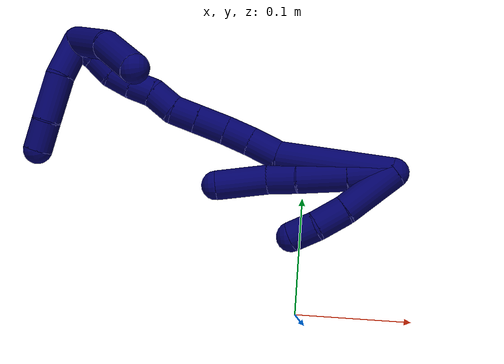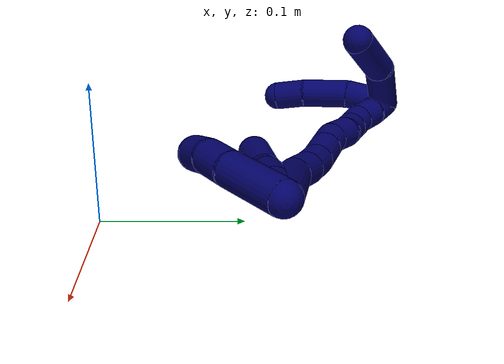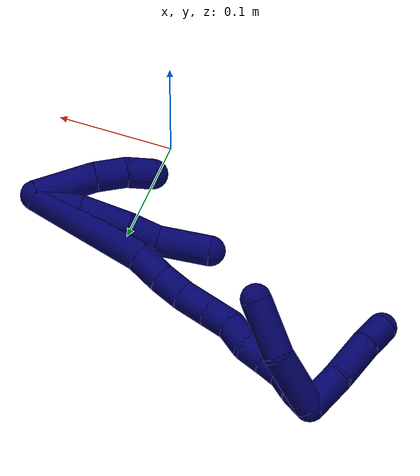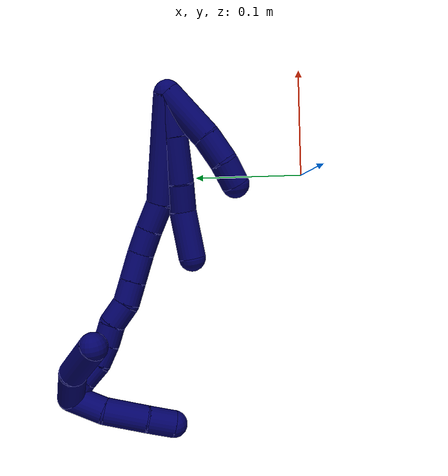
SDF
<sdf version="1.7">
 <world name="default">
  <model name="7">
   <static>0</static>
   <link name="7">
    <collision name="collision-cylinder-e_1_2_8">
     <pose>3.7e-05 0.000132 -0.018654 -3.13454 0.002001 -0.553041</pose>
     <geometry><cylinder><radius>0.0125</radius><length>0.037308</length></cylinder></geometry>
     <surface>
      <friction><ode><mu>1.16</mu><mu2>1.16</mu2><slip1>0</slip1><slip2>0</slip2></ode></friction>
      <contact><ode><kp>1e+06</kp><kd>1</kd><max_vel>0</max_vel><min_depth>0.001</min_depth></ode></contact>
     </surface>
    </collision>
    <visual name="visual-cylinder-e_1_2_8">
     <pose>3.7e-05 0.000132 -0.018654 -3.13454 0.002001 -0.553041</pose>
     <geometry><cylinder><radius>0.0125</radius><length>0.037308</length></cylinder></geometry>
     <material><ambient>0.003922 0 0.403922 1</ambient></material>
    </visual>
    <collision name="collision-cylinder-e_2_8_9">
     <pose>0.000168 0.001162 -0.058338 -3.09889 0.004422 -0.206361</pose>
     <geometry><cylinder><radius>0.0125</radius><length>0.042101</length></cylinder></geometry>
     <surface>
      <friction><ode><mu>1.16</mu><mu2>1.16</mu2><slip1>0</slip1><slip2>0</slip2></ode></friction>
      <contact><ode><kp>1e+06</kp><kd>1</kd><max_vel>0</max_vel><min_depth>0.001</min_depth></ode></contact>
     </surface>
    </collision>
    <visual name="visual-cylinder-e_2_8_9">
     <pose>0.000168 0.001162 -0.058338 -3.09889 0.004422 -0.206361</pose>
     <geometry><cylinder><radius>0.0125</radius><length>0.042101</length></cylinder></geometry>
     <material><ambient>0.003922 0 0.403922 1</ambient></material>
    </visual>
    <collision name="collision-cylinder-e_3_9_10">
     <pose>0.001257 0.003482 -0.092313 -3.03223 0.076351 -1.21849</pose>
     <geometry><cylinder><radius>0.0125</radius><length>0.026119</length></cylinder></geometry>
     <surface>
      <friction><ode><mu>1.16</mu><mu2>1.16</mu2><slip1>0</slip1><slip2>0</slip2></ode></friction>
      <contact><ode><kp>1e+06</kp><kd>1</kd><max_vel>0</max_vel><min_depth>0.001</min_depth></ode></contact>
     </surface>
    </collision>
    <visual name="visual-cylinder-e_3_9_10">
     <pose>0.001257 0.003482 -0.092313 -3.03223 0.076351 -1.21849</pose>
     <geometry><cylinder><radius>0.0125</radius><length>0.026119</length></cylinder></geometry>
     <material><ambient>0.003922 0 0.403922 1</ambient></material>
    </visual>
    <collision name="collision-cylinder-e_4_10_6">
     <pose>-0.000316 0.002929 -0.127256 3.05211 -0.115788 -1.82612</pose>
     <geometry><cylinder><radius>0.0125</radius><length>0.044471</length></cylinder></geometry>
     <surface>
      <friction><ode><mu>1.16</mu><mu2>1.16</mu2><slip1>0</slip1><slip2>0</slip2></ode></friction>
      <contact><ode><kp>1e+06</kp><kd>1</kd><max_vel>0</max_vel><min_depth>0.001</min_depth></ode></contact>
     </surface>
    </collision>
    <visual name="visual-cylinder-e_4_10_6">
     <pose>-0.000316 0.002929 -0.127256 3.05211 -0.115788 -1.82612</pose>
     <geometry><cylinder><radius>0.0125</radius><length>0.044471</length></cylinder></geometry>
     <material><ambient>0.003922 0 0.403922 1</ambient></material>
    </visual>
    <collision name="collision-cylinder-e_1_2_11">
     <pose>0.000587 -0.014811 -0.020726 2.52111 0.023046 0.071858</pose>
     <geometry><cylinder><radius>0.0125</radius><length>0.050962</length></cylinder></geometry>
     <surface>
      <friction><ode><mu>1.16</mu><mu2>1.16</mu2><slip1>0</slip1><slip2>0</slip2></ode></friction>
      <contact><ode><kp>1e+06</kp><kd>1</kd><max_vel>0</max_vel><min_depth>0.001</min_depth></ode></contact>
     </surface>
    </collision>
    <visual name="visual-cylinder-e_1_2_11">
     <pose>0.000587 -0.014811 -0.020726 2.52111 0.023046 0.071858</pose>
     <geometry><cylinder><radius>0.0125</radius><length>0.050962</length></cylinder></geometry>
     <material><ambient>0.003922 0 0.403922 1</ambient></material>
    </visual>
    <collision name="collision-cylinder-e_2_11_12">
     <pose>0.001455 -0.035624 -0.053129 2.6669 0.021336 0.088144</pose>
     <geometry><cylinder><radius>0.0125</radius><length>0.026265</length></cylinder></geometry>
     <surface>
      <friction><ode><mu>1.16</mu><mu2>1.16</mu2><slip1>0</slip1><slip2>0</slip2></ode></friction>
      <contact><ode><kp>1e+06</kp><kd>1</kd><max_vel>0</max_vel><min_depth>0.001</min_depth></ode></contact>
     </surface>
    </collision>
    <visual name="visual-cylinder-e_2_11_12">
     <pose>0.001455 -0.035624 -0.053129 2.6669 0.021336 0.088144</pose>
     <geometry><cylinder><radius>0.0125</radius><length>0.026265</length></cylinder></geometry>
     <material><ambient>0.003922 0 0.403922 1</ambient></material>
    </visual>
    <collision name="collision-cylinder-e_3_12_5">
     <pose>0.003694 -0.044774 -0.075573 2.85698 0.172958 1.08833</pose>
     <geometry><cylinder><radius>0.0125</radius><length>0.022773</length></cylinder></geometry>
     <surface>
      <friction><ode><mu>1.16</mu><mu2>1.16</mu2><slip1>0</slip1><slip2>0</slip2></ode></friction>
      <contact><ode><kp>1e+06</kp><kd>1</kd><max_vel>0</max_vel><min_depth>0.001</min_depth></ode></contact>
     </surface>
    </collision>
    <visual name="visual-cylinder-e_3_12_5">
     <pose>0.003694 -0.044774 -0.075573 2.85698 0.172958 1.08833</pose>
     <geometry><cylinder><radius>0.0125</radius><length>0.022773</length></cylinder></geometry>
     <material><ambient>0.003922 0 0.403922 1</ambient></material>
    </visual>
    <collision name="collision-cylinder-e_1_2_13">
     <pose>-0.001944 0.011716 -0.04753 -2.89991 -0.039687 0.324007</pose>
     <geometry><cylinder><radius>0.0125</radius><length>0.097983</length></cylinder></geometry>
     <surface>
      <friction><ode><mu>1.16</mu><mu2>1.16</mu2><slip1>0</slip1><slip2>0</slip2></ode></friction>
      <contact><ode><kp>1e+06</kp><kd>1</kd><max_vel>0</max_vel><min_depth>0.001</min_depth></ode></contact>
     </surface>
    </collision>
    <visual name="visual-cylinder-e_1_2_13">
     <pose>-0.001944 0.011716 -0.04753 -2.89991 -0.039687 0.324007</pose>
     <geometry><cylinder><radius>0.0125</radius><length>0.097983</length></cylinder></geometry>
     <material><ambient>0.003922 0 0.403922 1</ambient></material>
    </visual>
    <collision name="collision-cylinder-e_2_13_14">
     <pose>-0.006789 0.029857 -0.106509 -2.63023 -0.217539 0.79143</pose>
     <geometry><cylinder><radius>0.0125</radius><length>0.02689</length></cylinder></geometry>
     <surface>
      <friction><ode><mu>1.16</mu><mu2>1.16</mu2><slip1>0</slip1><slip2>0</slip2></ode></friction>
      <contact><ode><kp>1e+06</kp><kd>1</kd><max_vel>0</max_vel><min_depth>0.001</min_depth></ode></contact>
     </surface>
    </collision>
    <visual name="visual-cylinder-e_2_13_14">
     <pose>-0.006789 0.029857 -0.106509 -2.63023 -0.217539 0.79143</pose>
     <geometry><cylinder><radius>0.0125</radius><length>0.02689</length></cylinder></geometry>
     <material><ambient>0.003922 0 0.403922 1</ambient></material>
    </visual>
    <collision name="collision-cylinder-e_3_14_15">
     <pose>-0.0129 0.041091 -0.128215 -2.70311 -0.275977 1.11467</pose>
     <geometry><cylinder><radius>0.0125</radius><length>0.023549</length></cylinder></geometry>
     <surface>
      <friction><ode><mu>1.16</mu><mu2>1.16</mu2><slip1>0</slip1><slip2>0</slip2></ode></friction>
      <contact><ode><kp>1e+06</kp><kd>1</kd><max_vel>0</max_vel><min_depth>0.001</min_depth></ode></contact>
     </surface>
    </collision>
    <visual name="visual-cylinder-e_3_14_15">
     <pose>-0.0129 0.041091 -0.128215 -2.70311 -0.275977 1.11467</pose>
     <geometry><cylinder><radius>0.0125</radius><length>0.023549</length></cylinder></geometry>
     <material><ambient>0.003922 0 0.403922 1</ambient></material>
    </visual>
    <collision name="collision-cylinder-e_4_15_16">
     <pose>-0.020941 0.050151 -0.150335 -2.79753 -0.366201 1.63444</pose>
     <geometry><cylinder><radius>0.0125</radius><length>0.026992</length></cylinder></geometry>
     <surface>
      <friction><ode><mu>1.16</mu><mu2>1.16</mu2><slip1>0</slip1><slip2>0</slip2></ode></friction>
      <contact><ode><kp>1e+06</kp><kd>1</kd><max_vel>0</max_vel><min_depth>0.001</min_depth></ode></contact>
     </surface>
    </collision>
    <visual name="visual-cylinder-e_4_15_16">
     <pose>-0.020941 0.050151 -0.150335 -2.79753 -0.366201 1.63444</pose>
     <geometry><cylinder><radius>0.0125</radius><length>0.026992</length></cylinder></geometry>
     <material><ambient>0.003922 0 0.403922 1</ambient></material>
    </visual>
    <collision name="collision-cylinder-e_5_16_17">
     <pose>-0.029602 0.0578 -0.171666 -2.79702 -0.363651 1.62579</pose>
     <geometry><cylinder><radius>0.0125</radius><length>0.021528</length></cylinder></geometry>
     <surface>
      <friction><ode><mu>1.16</mu><mu2>1.16</mu2><slip1>0</slip1><slip2>0</slip2></ode></friction>
      <contact><ode><kp>1e+06</kp><kd>1</kd><max_vel>0</max_vel><min_depth>0.001</min_depth></ode></contact>
     </surface>
    </collision>
    <visual name="visual-cylinder-e_5_16_17">
     <pose>-0.029602 0.0578 -0.171666 -2.79702 -0.363651 1.62579</pose>
     <geometry><cylinder><radius>0.0125</radius><length>0.021528</length></cylinder></geometry>
     <material><ambient>0.003922 0 0.403922 1</ambient></material>
    </visual>
    <collision name="collision-cylinder-e_6_17_18">
     <pose>-0.037533 0.068109 -0.189203 -2.43328 -0.368589 0.933931</pose>
     <geometry><cylinder><radius>0.0125</radius><length>0.022776</length></cylinder></geometry>
     <surface>
      <friction><ode><mu>1.16</mu><mu2>1.16</mu2><slip1>0</slip1><slip2>0</slip2></ode></friction>
      <contact><ode><kp>1e+06</kp><kd>1</kd><max_vel>0</max_vel><min_depth>0.001</min_depth></ode></contact>
     </surface>
    </collision>
    <visual name="visual-cylinder-e_6_17_18">
     <pose>-0.037533 0.068109 -0.189203 -2.43328 -0.368589 0.933931</pose>
     <geometry><cylinder><radius>0.0125</radius><length>0.022776</length></cylinder></geometry>
     <material><ambient>0.003922 0 0.403922 1</ambient></material>
    </visual>
    <collision name="collision-cylinder-e_7_18_19">
     <pose>-0.044105 0.07879 -0.206321 -2.74687 -0.246697 1.10999</pose>
     <geometry><cylinder><radius>0.0125</radius><length>0.02022</length></cylinder></geometry>
     <surface>
      <friction><ode><mu>1.16</mu><mu2>1.16</mu2><slip1>0</slip1><slip2>0</slip2></ode></friction>
      <contact><ode><kp>1e+06</kp><kd>1</kd><max_vel>0</max_vel><min_depth>0.001</min_depth></ode></contact>
     </surface>
    </collision>
    <visual name="visual-cylinder-e_7_18_19">
     <pose>-0.044105 0.07879 -0.206321 -2.74687 -0.246697 1.10999</pose>
     <geometry><cylinder><radius>0.0125</radius><length>0.02022</length></cylinder></geometry>
     <material><ambient>0.003922 0 0.403922 1</ambient></material>
    </visual>
    <collision name="collision-cylinder-e_8_19_20">
     <pose>-0.050767 0.086686 -0.223474 -2.67067 -0.432051 1.48177</pose>
     <geometry><cylinder><radius>0.0125</radius><length>0.020028</length></cylinder></geometry>
     <surface>
      <friction><ode><mu>1.16</mu><mu2>1.16</mu2><slip1>0</slip1><slip2>0</slip2></ode></friction>
      <contact><ode><kp>1e+06</kp><kd>1</kd><max_vel>0</max_vel><min_depth>0.001</min_depth></ode></contact>
     </surface>
    </collision>
    <visual name="visual-cylinder-e_8_19_20">
     <pose>-0.050767 0.086686 -0.223474 -2.67067 -0.432051 1.48177</pose>
     <geometry><cylinder><radius>0.0125</radius><length>0.020028</length></cylinder></geometry>
     <material><ambient>0.003922 0 0.403922 1</ambient></material>
    </visual>
    <collision name="collision-cylinder-e_9_20_21">
     <pose>-0.060082 0.096901 -0.237641 -2.35405 -0.537457 1.17069</pose>
     <geometry><cylinder><radius>0.0125</radius><length>0.020006</length></cylinder></geometry>
     <surface>
      <friction><ode><mu>1.16</mu><mu2>1.16</mu2><slip1>0</slip1><slip2>0</slip2></ode></friction>
      <contact><ode><kp>1e+06</kp><kd>1</kd><max_vel>0</max_vel><min_depth>0.001</min_depth></ode></contact>
     </surface>
    </collision>
    <visual name="visual-cylinder-e_9_20_21">
     <pose>-0.060082 0.096901 -0.237641 -2.35405 -0.537457 1.17069</pose>
     <geometry><cylinder><radius>0.0125</radius><length>0.020006</length></cylinder></geometry>
     <material><ambient>0.003922 0 0.403922 1</ambient></material>
    </visual>
    <collision name="collision-cylinder-e_10_21_1">
     <pose>-0.070879 0.108063 -0.250211 -2.47938 -0.602594 1.47004</pose>
     <geometry><cylinder><radius>0.0125</radius><length>0.020028</length></cylinder></geometry>
     <surface>
      <friction><ode><mu>1.16</mu><mu2>1.16</mu2><slip1>0</slip1><slip2>0</slip2></ode></friction>
      <contact><ode><kp>1e+06</kp><kd>1</kd><max_vel>0</max_vel><min_depth>0.001</min_depth></ode></contact>
     </surface>
    </collision>
    <visual name="visual-cylinder-e_10_21_1">
     <pose>-0.070879 0.108063 -0.250211 -2.47938 -0.602594 1.47004</pose>
     <geometry><cylinder><radius>0.0125</radius><length>0.020028</length></cylinder></geometry>
     <material><ambient>0.003922 0 0.403922 1</ambient></material>
    </visual>
    <collision name="collision-cylinder-e_1_1_22">
     <pose>-0.073949 0.09814 -0.264289 2.03836 0.153875 0.249265</pose>
     <geometry><cylinder><radius>0.0125</radius><length>0.034</length></cylinder></geometry>
     <surface>
      <friction><ode><mu>1.16</mu><mu2>1.16</mu2><slip1>0</slip1><slip2>0</slip2></ode></friction>
      <contact><ode><kp>1e+06</kp><kd>1</kd><max_vel>0</max_vel><min_depth>0.001</min_depth></ode></contact>
     </surface>
    </collision>
    <visual name="visual-cylinder-e_1_1_22">
     <pose>-0.073949 0.09814 -0.264289 2.03836 0.153875 0.249265</pose>
     <geometry><cylinder><radius>0.0125</radius><length>0.034</length></cylinder></geometry>
     <material><ambient>0.003922 0 0.403922 1</ambient></material>
    </visual>
    <collision name="collision-cylinder-e_2_22_23">
     <pose>-0.064027 0.065916 -0.279236 1.97532 0.37219 0.556037</pose>
     <geometry><cylinder><radius>0.0125</radius><length>0.040236</length></cylinder></geometry>
     <surface>
      <friction><ode><mu>1.16</mu><mu2>1.16</mu2><slip1>0</slip1><slip2>0</slip2></ode></friction>
      <contact><ode><kp>1e+06</kp><kd>1</kd><max_vel>0</max_vel><min_depth>0.001</min_depth></ode></contact>
     </surface>
    </collision>
    <visual name="visual-cylinder-e_2_22_23">
     <pose>-0.064027 0.065916 -0.279236 1.97532 0.37219 0.556037</pose>
     <geometry><cylinder><radius>0.0125</radius><length>0.040236</length></cylinder></geometry>
     <material><ambient>0.003922 0 0.403922 1</ambient></material>
    </visual>
    <collision name="collision-cylinder-e_3_23_4">
     <pose>-0.050706 0.038551 -0.291822 2.04551 0.484922 0.769924</pose>
     <geometry><cylinder><radius>0.0125</radius><length>0.025764</length></cylinder></geometry>
     <surface>
      <friction><ode><mu>1.16</mu><mu2>1.16</mu2><slip1>0</slip1><slip2>0</slip2></ode></friction>
      <contact><ode><kp>1e+06</kp><kd>1</kd><max_vel>0</max_vel><min_depth>0.001</min_depth></ode></contact>
     </surface>
    </collision>
    <visual name="visual-cylinder-e_3_23_4">
     <pose>-0.050706 0.038551 -0.291822 2.04551 0.484922 0.769924</pose>
     <geometry><cylinder><radius>0.0125</radius><length>0.025764</length></cylinder></geometry>
     <material><ambient>0.003922 0 0.403922 1</ambient></material>
    </visual>
    <collision name="collision-cylinder-e_1_1_24">
     <pose>-0.089178 0.099805 -0.238036 0.619791 -0.502865 -0.164135</pose>
     <geometry><cylinder><radius>0.0125</radius><length>0.052385</length></cylinder></geometry>
     <surface>
      <friction><ode><mu>1.16</mu><mu2>1.16</mu2><slip1>0</slip1><slip2>0</slip2></ode></friction>
      <contact><ode><kp>1e+06</kp><kd>1</kd><max_vel>0</max_vel><min_depth>0.001</min_depth></ode></contact>
     </surface>
    </collision>
    <visual name="visual-cylinder-e_1_1_24">
     <pose>-0.089178 0.099805 -0.238036 0.619791 -0.502865 -0.164135</pose>
     <geometry><cylinder><radius>0.0125</radius><length>0.052385</length></cylinder></geometry>
     <material><ambient>0.003922 0 0.403922 1</ambient></material>
    </visual>
    <collision name="collision-cylinder-e_2_24_3">
     <pose>-0.10819 0.06918 -0.204292 0.854272 -0.271699 -0.124272</pose>
     <geometry><cylinder><radius>0.0125</radius><length>0.047615</length></cylinder></geometry>
     <surface>
      <friction><ode><mu>1.16</mu><mu2>1.16</mu2><slip1>0</slip1><slip2>0</slip2></ode></friction>
      <contact><ode><kp>1e+06</kp><kd>1</kd><max_vel>0</max_vel><min_depth>0.001</min_depth></ode></contact>
     </surface>
    </collision>
    <visual name="visual-cylinder-e_2_24_3">
     <pose>-0.10819 0.06918 -0.204292 0.854272 -0.271699 -0.124272</pose>
     <geometry><cylinder><radius>0.0125</radius><length>0.047615</length></cylinder></geometry>
     <material><ambient>0.003922 0 0.403922 1</ambient></material>
    </visual>
    <collision name="collision-sphere-3">
     <pose>-0.114579 0.051885 -0.18923 0 -0 0</pose>
     <geometry><sphere><radius>0.0125</radius></sphere></geometry>
     <surface>
      <friction><ode><mu>1.16</mu><mu2>1.16</mu2><slip1>0</slip1><slip2>0</slip2></ode></friction>
      <contact><ode><kp>1e+06</kp><kd>1</kd><max_vel>0</max_vel><min_depth>0.001</min_depth></ode></contact>
     </surface>
    </collision>
    <visual name="visual-sphere-3">
     <pose>-0.114579 0.051885 -0.18923 0 -0 0</pose>
     <geometry><sphere><radius>0.0125</radius></sphere></geometry>
     <material><ambient>0.003922 0 0.403922 1</ambient></material>
    </visual>
    <collision name="collision-sphere-24">
     <pose>-0.101801 0.086474 -0.219354 0 -0 0</pose>
     <geometry><sphere><radius>0.0125</radius></sphere></geometry>
     <surface>
      <friction><ode><mu>1.16</mu><mu2>1.16</mu2><slip1>0</slip1><slip2>0</slip2></ode></friction>
      <contact><ode><kp>1e+06</kp><kd>1</kd><max_vel>0</max_vel><min_depth>0.001</min_depth></ode></contact>
     </surface>
    </collision>
    <visual name="visual-sphere-24">
     <pose>-0.101801 0.086474 -0.219354 0 -0 0</pose>
     <geometry><sphere><radius>0.0125</radius></sphere></geometry>
     <material><ambient>0.003922 0 0.403922 1</ambient></material>
    </visual>
    <collision name="collision-sphere-4">
     <pose>-0.044701 0.028414 -0.297031 0 -0 0</pose>
     <geometry><sphere><radius>0.0125</radius></sphere></geometry>
     <surface>
      <friction><ode><mu>1.16</mu><mu2>1.16</mu2><slip1>0</slip1><slip2>0</slip2></ode></friction>
      <contact><ode><kp>1e+06</kp><kd>1</kd><max_vel>0</max_vel><min_depth>0.001</min_depth></ode></contact>
     </surface>
    </collision>
    <visual name="visual-sphere-4">
     <pose>-0.044701 0.028414 -0.297031 0 -0 0</pose>
     <geometry><sphere><radius>0.0125</radius></sphere></geometry>
     <material><ambient>0.003922 0 0.403922 1</ambient></material>
    </visual>
    <collision name="collision-sphere-23">
     <pose>-0.056711 0.048688 -0.286612 0 -0 0</pose>
     <geometry><sphere><radius>0.0125</radius></sphere></geometry>
     <surface>
      <friction><ode><mu>1.16</mu><mu2>1.16</mu2><slip1>0</slip1><slip2>0</slip2></ode></friction>
      <contact><ode><kp>1e+06</kp><kd>1</kd><max_vel>0</max_vel><min_depth>0.001</min_depth></ode></contact>
     </surface>
    </collision>
    <visual name="visual-sphere-23">
     <pose>-0.056711 0.048688 -0.286612 0 -0 0</pose>
     <geometry><sphere><radius>0.0125</radius></sphere></geometry>
     <material><ambient>0.003922 0 0.403922 1</ambient></material>
    </visual>
    <collision name="collision-sphere-22">
     <pose>-0.071343 0.083144 -0.27186 0 -0 0</pose>
     <geometry><sphere><radius>0.0125</radius></sphere></geometry>
     <surface>
      <friction><ode><mu>1.16</mu><mu2>1.16</mu2><slip1>0</slip1><slip2>0</slip2></ode></friction>
      <contact><ode><kp>1e+06</kp><kd>1</kd><max_vel>0</max_vel><min_depth>0.001</min_depth></ode></contact>
     </surface>
    </collision>
    <visual name="visual-sphere-22">
     <pose>-0.071343 0.083144 -0.27186 0 -0 0</pose>
     <geometry><sphere><radius>0.0125</radius></sphere></geometry>
     <material><ambient>0.003922 0 0.403922 1</ambient></material>
    </visual>
    <collision name="collision-sphere-1">
     <pose>-0.076554 0.113136 -0.256717 0 -0 0</pose>
     <geometry><sphere><radius>0.0125</radius></sphere></geometry>
     <surface>
      <friction><ode><mu>1.16</mu><mu2>1.16</mu2><slip1>0</slip1><slip2>0</slip2></ode></friction>
      <contact><ode><kp>1e+06</kp><kd>1</kd><max_vel>0</max_vel><min_depth>0.001</min_depth></ode></contact>
     </surface>
    </collision>
    <visual name="visual-sphere-1">
     <pose>-0.076554 0.113136 -0.256717 0 -0 0</pose>
     <geometry><sphere><radius>0.0125</radius></sphere></geometry>
     <material><ambient>0.003922 0 0.403922 1</ambient></material>
    </visual>
    <collision name="collision-sphere-21">
     <pose>-0.065203 0.10299 -0.243704 0 -0 0</pose>
     <geometry><sphere><radius>0.0125</radius></sphere></geometry>
     <surface>
      <friction><ode><mu>1.16</mu><mu2>1.16</mu2><slip1>0</slip1><slip2>0</slip2></ode></friction>
      <contact><ode><kp>1e+06</kp><kd>1</kd><max_vel>0</max_vel><min_depth>0.001</min_depth></ode></contact>
     </surface>
    </collision>
    <visual name="visual-sphere-21">
     <pose>-0.065203 0.10299 -0.243704 0 -0 0</pose>
     <geometry><sphere><radius>0.0125</radius></sphere></geometry>
     <material><ambient>0.003922 0 0.403922 1</ambient></material>
    </visual>
    <collision name="collision-sphere-11">
     <pose>0.001174 -0.029623 -0.041452 0 -0 0</pose>
     <geometry><sphere><radius>0.0125</radius></sphere></geometry>
     <surface>
      <friction><ode><mu>1.16</mu><mu2>1.16</mu2><slip1>0</slip1><slip2>0</slip2></ode></friction>
      <contact><ode><kp>1e+06</kp><kd>1</kd><max_vel>0</max_vel><min_depth>0.001</min_depth></ode></contact>
     </surface>
    </collision>
    <visual name="visual-sphere-11">
     <pose>0.001174 -0.029623 -0.041452 0 -0 0</pose>
     <geometry><sphere><radius>0.0125</radius></sphere></geometry>
     <material><ambient>0.003922 0 0.403922 1</ambient></material>
    </visual>
    <collision name="collision-sphere-6">
     <pose>-0.002885 0.000955 -0.149254 0 -0 0</pose>
     <geometry><sphere><radius>0.0125</radius></sphere></geometry>
     <surface>
      <friction><ode><mu>1.16</mu><mu2>1.16</mu2><slip1>0</slip1><slip2>0</slip2></ode></friction>
      <contact><ode><kp>1e+06</kp><kd>1</kd><max_vel>0</max_vel><min_depth>0.001</min_depth></ode></contact>
     </surface>
    </collision>
    <visual name="visual-sphere-6">
     <pose>-0.002885 0.000955 -0.149254 0 -0 0</pose>
     <geometry><sphere><radius>0.0125</radius></sphere></geometry>
     <material><ambient>0.003922 0 0.403922 1</ambient></material>
    </visual>
    <collision name="collision-sphere-10">
     <pose>0.002253 0.004903 -0.105257 0 -0 0</pose>
     <geometry><sphere><radius>0.0125</radius></sphere></geometry>
     <surface>
      <friction><ode><mu>1.16</mu><mu2>1.16</mu2><slip1>0</slip1><slip2>0</slip2></ode></friction>
      <contact><ode><kp>1e+06</kp><kd>1</kd><max_vel>0</max_vel><min_depth>0.001</min_depth></ode></contact>
     </surface>
    </collision>
    <visual name="visual-sphere-10">
     <pose>0.002253 0.004903 -0.105257 0 -0 0</pose>
     <geometry><sphere><radius>0.0125</radius></sphere></geometry>
     <material><ambient>0.003922 0 0.403922 1</ambient></material>
    </visual>
    <collision name="collision-sphere-9">
     <pose>0.000261 0.00206 -0.079369 0 -0 0</pose>
     <geometry><sphere><radius>0.0125</radius></sphere></geometry>
     <surface>
      <friction><ode><mu>1.16</mu><mu2>1.16</mu2><slip1>0</slip1><slip2>0</slip2></ode></friction>
      <contact><ode><kp>1e+06</kp><kd>1</kd><max_vel>0</max_vel><min_depth>0.001</min_depth></ode></contact>
     </surface>
    </collision>
    <visual name="visual-sphere-9">
     <pose>0.000261 0.00206 -0.079369 0 -0 0</pose>
     <geometry><sphere><radius>0.0125</radius></sphere></geometry>
     <material><ambient>0.003922 0 0.403922 1</ambient></material>
    </visual>
    <collision name="collision-sphere-2">
     <geometry><sphere><radius>0.0125</radius></sphere></geometry>
     <surface>
      <friction><ode><mu>1.16</mu><mu2>1.16</mu2><slip1>0</slip1><slip2>0</slip2></ode></friction>
      <contact><ode><kp>1e+06</kp><kd>1</kd><max_vel>0</max_vel><min_depth>0.001</min_depth></ode></contact>
     </surface>
    </collision>
    <visual name="visual-sphere-2">
     <geometry><sphere><radius>0.0125</radius></sphere></geometry>
     <material><ambient>0.003922 0 0.403922 1</ambient></material>
    </visual>
    <collision name="collision-sphere-19">
     <pose>-0.046574 0.08256 -0.215371 0 -0 0</pose>
     <geometry><sphere><radius>0.0125</radius></sphere></geometry>
     <surface>
      <friction><ode><mu>1.16</mu><mu2>1.16</mu2><slip1>0</slip1><slip2>0</slip2></ode></friction>
      <contact><ode><kp>1e+06</kp><kd>1</kd><max_vel>0</max_vel><min_depth>0.001</min_depth></ode></contact>
     </surface>
    </collision>
    <visual name="visual-sphere-19">
     <pose>-0.046574 0.08256 -0.215371 0 -0 0</pose>
     <geometry><sphere><radius>0.0125</radius></sphere></geometry>
     <material><ambient>0.003922 0 0.403922 1</ambient></material>
    </visual>
    <collision name="collision-sphere-8">
     <pose>7.5e-05 0.000263 -0.037307 0 -0 0</pose>
     <geometry><sphere><radius>0.0125</radius></sphere></geometry>
     <surface>
      <friction><ode><mu>1.16</mu><mu2>1.16</mu2><slip1>0</slip1><slip2>0</slip2></ode></friction>
      <contact><ode><kp>1e+06</kp><kd>1</kd><max_vel>0</max_vel><min_depth>0.001</min_depth></ode></contact>
     </surface>
    </collision>
    <visual name="visual-sphere-8">
     <pose>7.5e-05 0.000263 -0.037307 0 -0 0</pose>
     <geometry><sphere><radius>0.0125</radius></sphere></geometry>
     <material><ambient>0.003922 0 0.403922 1</ambient></material>
    </visual>
    <collision name="collision-sphere-12">
     <pose>0.001735 -0.041625 -0.064807 0 -0 0</pose>
     <geometry><sphere><radius>0.0125</radius></sphere></geometry>
     <surface>
      <friction><ode><mu>1.16</mu><mu2>1.16</mu2><slip1>0</slip1><slip2>0</slip2></ode></friction>
      <contact><ode><kp>1e+06</kp><kd>1</kd><max_vel>0</max_vel><min_depth>0.001</min_depth></ode></contact>
     </surface>
    </collision>
    <visual name="visual-sphere-12">
     <pose>0.001735 -0.041625 -0.064807 0 -0 0</pose>
     <geometry><sphere><radius>0.0125</radius></sphere></geometry>
     <material><ambient>0.003922 0 0.403922 1</ambient></material>
    </visual>
    <collision name="collision-sphere-5">
     <pose>0.005654 -0.047924 -0.086338 0 -0 0</pose>
     <geometry><sphere><radius>0.0125</radius></sphere></geometry>
     <surface>
      <friction><ode><mu>1.16</mu><mu2>1.16</mu2><slip1>0</slip1><slip2>0</slip2></ode></friction>
      <contact><ode><kp>1e+06</kp><kd>1</kd><max_vel>0</max_vel><min_depth>0.001</min_depth></ode></contact>
     </surface>
    </collision>
    <visual name="visual-sphere-5">
     <pose>0.005654 -0.047924 -0.086338 0 -0 0</pose>
     <geometry><sphere><radius>0.0125</radius></sphere></geometry>
     <material><ambient>0.003922 0 0.403922 1</ambient></material>
    </visual>
    <collision name="collision-sphere-13">
     <pose>-0.003888 0.023432 -0.095061 0 -0 0</pose>
     <geometry><sphere><radius>0.0125</radius></sphere></geometry>
     <surface>
      <friction><ode><mu>1.16</mu><mu2>1.16</mu2><slip1>0</slip1><slip2>0</slip2></ode></friction>
      <contact><ode><kp>1e+06</kp><kd>1</kd><max_vel>0</max_vel><min_depth>0.001</min_depth></ode></contact>
     </surface>
    </collision>
    <visual name="visual-sphere-13">
     <pose>-0.003888 0.023432 -0.095061 0 -0 0</pose>
     <geometry><sphere><radius>0.0125</radius></sphere></geometry>
     <material><ambient>0.003922 0 0.403922 1</ambient></material>
    </visual>
    <collision name="collision-sphere-14">
     <pose>-0.009691 0.036281 -0.117958 0 -0 0</pose>
     <geometry><sphere><radius>0.0125</radius></sphere></geometry>
     <surface>
      <friction><ode><mu>1.16</mu><mu2>1.16</mu2><slip1>0</slip1><slip2>0</slip2></ode></friction>
      <contact><ode><kp>1e+06</kp><kd>1</kd><max_vel>0</max_vel><min_depth>0.001</min_depth></ode></contact>
     </surface>
    </collision>
    <visual name="visual-sphere-14">
     <pose>-0.009691 0.036281 -0.117958 0 -0 0</pose>
     <geometry><sphere><radius>0.0125</radius></sphere></geometry>
     <material><ambient>0.003922 0 0.403922 1</ambient></material>
    </visual>
    <collision name="collision-sphere-15">
     <pose>-0.016108 0.045901 -0.138473 0 -0 0</pose>
     <geometry><sphere><radius>0.0125</radius></sphere></geometry>
     <surface>
      <friction><ode><mu>1.16</mu><mu2>1.16</mu2><slip1>0</slip1><slip2>0</slip2></ode></friction>
      <contact><ode><kp>1e+06</kp><kd>1</kd><max_vel>0</max_vel><min_depth>0.001</min_depth></ode></contact>
     </surface>
    </collision>
    <visual name="visual-sphere-15">
     <pose>-0.016108 0.045901 -0.138473 0 -0 0</pose>
     <geometry><sphere><radius>0.0125</radius></sphere></geometry>
     <material><ambient>0.003922 0 0.403922 1</ambient></material>
    </visual>
    <collision name="collision-sphere-16">
     <pose>-0.025773 0.054402 -0.162198 0 -0 0</pose>
     <geometry><sphere><radius>0.0125</radius></sphere></geometry>
     <surface>
      <friction><ode><mu>1.16</mu><mu2>1.16</mu2><slip1>0</slip1><slip2>0</slip2></ode></friction>
      <contact><ode><kp>1e+06</kp><kd>1</kd><max_vel>0</max_vel><min_depth>0.001</min_depth></ode></contact>
     </surface>
    </collision>
    <visual name="visual-sphere-16">
     <pose>-0.025773 0.054402 -0.162198 0 -0 0</pose>
     <geometry><sphere><radius>0.0125</radius></sphere></geometry>
     <material><ambient>0.003922 0 0.403922 1</ambient></material>
    </visual>
    <collision name="collision-sphere-17">
     <pose>-0.03343 0.061198 -0.181135 0 -0 0</pose>
     <geometry><sphere><radius>0.0125</radius></sphere></geometry>
     <surface>
      <friction><ode><mu>1.16</mu><mu2>1.16</mu2><slip1>0</slip1><slip2>0</slip2></ode></friction>
      <contact><ode><kp>1e+06</kp><kd>1</kd><max_vel>0</max_vel><min_depth>0.001</min_depth></ode></contact>
     </surface>
    </collision>
    <visual name="visual-sphere-17">
     <pose>-0.03343 0.061198 -0.181135 0 -0 0</pose>
     <geometry><sphere><radius>0.0125</radius></sphere></geometry>
     <material><ambient>0.003922 0 0.403922 1</ambient></material>
    </visual>
    <collision name="collision-sphere-18">
     <pose>-0.041636 0.07502 -0.197271 0 -0 0</pose>
     <geometry><sphere><radius>0.0125</radius></sphere></geometry>
     <surface>
      <friction><ode><mu>1.16</mu><mu2>1.16</mu2><slip1>0</slip1><slip2>0</slip2></ode></friction>
      <contact><ode><kp>1e+06</kp><kd>1</kd><max_vel>0</max_vel><min_depth>0.001</min_depth></ode></contact>
     </surface>
    </collision>
    <visual name="visual-sphere-18">
     <pose>-0.041636 0.07502 -0.197271 0 -0 0</pose>
     <geometry><sphere><radius>0.0125</radius></sphere></geometry>
     <material><ambient>0.003922 0 0.403922 1</ambient></material>
    </visual>
    <collision name="collision-sphere-20">
     <pose>-0.05496 0.090812 -0.231578 0 -0 0</pose>
     <geometry><sphere><radius>0.0125</radius></sphere></geometry>
     <surface>
      <friction><ode><mu>1.16</mu><mu2>1.16</mu2><slip1>0</slip1><slip2>0</slip2></ode></friction>
      <contact><ode><kp>1e+06</kp><kd>1</kd><max_vel>0</max_vel><min_depth>0.001</min_depth></ode></contact>
     </surface>
    </collision>
    <visual name="visual-sphere-20">
     <pose>-0.05496 0.090812 -0.231578 0 -0 0</pose>
     <geometry><sphere><radius>0.0125</radius></sphere></geometry>
     <material><ambient>0.003922 0 0.403922 1</ambient></material>
    </visual>
    <inertial>
     <pose>-0.031073 0.036759 -0.141797 0 -0 0</pose>
     <mass>0.75</mass>
     <inertia>
      <ixx>0.000168</ixx>
      <ixy>0</ixy>
      <ixz>0</ixz>
      <iyy>-6.2e-05</iyy>
      <iyz>0</iyz>
      <izz>-1.2e-05</izz>
     </inertia>
    </inertial>
   </link>
   <pose>0.069836 0.124661 0.051333 -1.07691 1.08837 -0.984424</pose>
  </model>
 </world>
</sdf>
